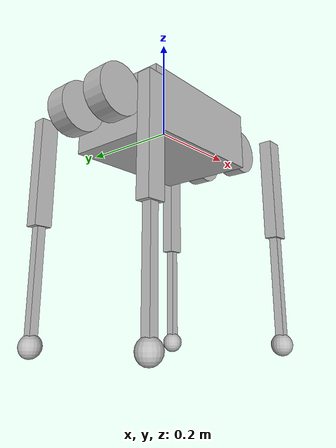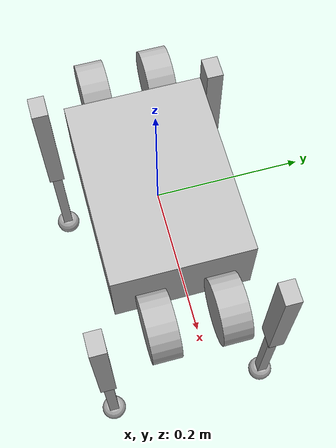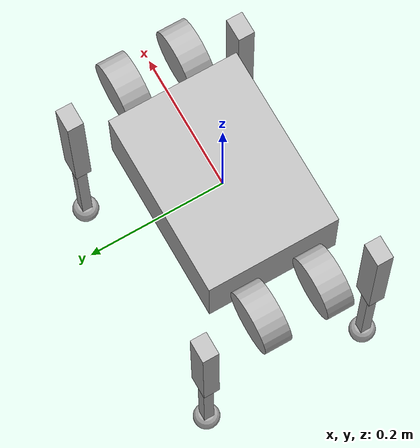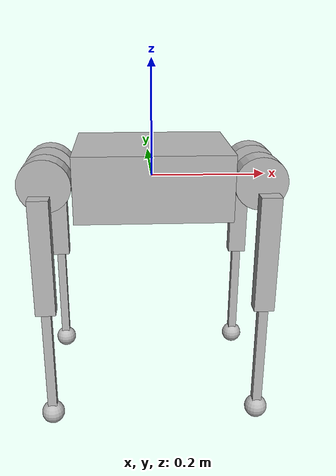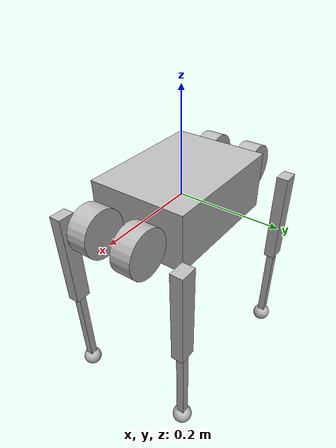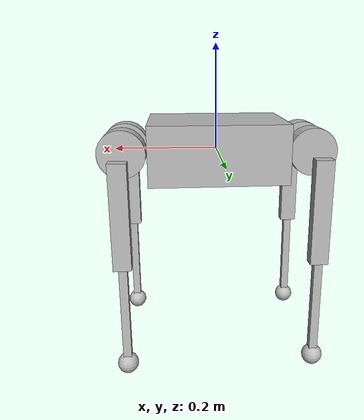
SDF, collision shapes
<sdf version="1.7">
  <model name="a1_description">
    <link name="base">
      <inertial>
        <pose>0.012728 0.002186 0.000515 0 -0 0</pose>
        <mass>4.714</mass>
        <inertia>
          <ixx>0.0169399</ixx>
          <ixy>8.38742e-05</ixy>
          <ixz>0.000597672</ixz>
          <iyy>0.0565802</iyy>
          <iyz>2.51329e-05</iyz>
          <izz>0.0648138</izz>
        </inertia>
      </inertial>
      <collision name="base_fixed_joint_lump__trunk_collision">
        <pose>0 0 0 0 -0 0</pose>
        <geometry>
          <box>
            <size>0.267 0.194 0.114</size>
          </box>
        </geometry>
      </collision>
      <collision name="base_fixed_joint_lump__imu_link_collision_1">
        <pose>0 0 0 0 -0 0</pose>
        <geometry>
          <box>
            <size>0.001 0.001 0.001</size>
          </box>
        </geometry>
      </collision>
      <visual name="base_visual">
        <pose>0 0 0 0 -0 0</pose>
        <geometry>
          <box>
            <size>0.001 0.001 0.001</size>
          </box>
        </geometry>
      </visual>
      <visual name="base_fixed_joint_lump__trunk_visual_1">
        <pose>0 0 0 0 -0 0</pose>
        <geometry>
          <mesh>
            <scale>1 1 1</scale>
            <uri>model://a1/meshes/trunk.stl</uri>
          </mesh>
        </geometry>
      </visual>
      <visual name="base_fixed_joint_lump__imu_link_visual_2">
        <pose>0 0 0 0 -0 0</pose>
        <geometry>
          <box>
            <size>0.001 0.001 0.001</size>
          </box>
        </geometry>
      </visual>
    </link>
    <joint name="FL_hip_joint" type="revolute">
      <pose relative_to="base">0.183 0.047 0 0 -0 0</pose>
      <parent>base</parent>
      <child>FL_hip</child>
      <axis>
        <xyz>1 0 0</xyz>
        <limit>
          <lower>-0.802851</lower>
          <upper>0.802851</upper>
          <effort>20</effort>
          <velocity>52.4</velocity>
        </limit>
        <dynamics>
          <damping>0</damping>
          <friction>0</friction>
          <spring_reference>0</spring_reference>
          <spring_stiffness>0</spring_stiffness>
        </dynamics>
      </axis>
    </joint>
    <link name="FL_hip">
      <pose relative_to="FL_hip_joint">0 0 0 0 -0 0</pose>
      <inertial>
        <pose>-0.003311 0.000635 3.1e-05 0 -0 0</pose>
        <mass>0.696</mass>
        <inertia>
          <ixx>0.000469246</ixx>
          <ixy>-9.409e-06</ixy>
          <ixz>-3.42e-07</ixz>
          <iyy>0.00080749</iyy>
          <iyz>-4.66e-07</iyz>
          <izz>0.000552929</izz>
        </inertia>
      </inertial>
      <collision name="FL_hip_collision">
        <pose>0 0 0 1.5708 -0 0</pose>
        <geometry>
          <cylinder>
            <length>0.04</length>
            <radius>0.046</radius>
          </cylinder>
        </geometry>
      </collision>
      <visual name="FL_hip_visual">
        <pose>0 0 0 0 -0 0</pose>
        <geometry>
          <mesh>
            <scale>1 1 1</scale>
            <uri>model://a1/meshes/hip.stl</uri>
          </mesh>
        </geometry>
      </visual>
    </link>
    <joint name="FL_thigh_joint" type="revolute">
      <pose relative_to="FL_hip">0 0.08505 0 0 -0 0</pose>
      <parent>FL_hip</parent>
      <child>FL_thigh</child>
      <axis>
        <xyz>0 1 0</xyz>
        <limit>
          <lower>-1.0472</lower>
          <upper>4.18879</upper>
          <effort>55</effort>
          <velocity>28.6</velocity>
        </limit>
        <dynamics>
          <damping>0</damping>
          <friction>0</friction>
          <spring_reference>0</spring_reference>
          <spring_stiffness>0</spring_stiffness>
        </dynamics>
      </axis>
    </joint>
    <link name="FL_thigh">
      <pose relative_to="FL_thigh_joint">0 0 0 0 -0 0</pose>
      <inertial>
        <pose>-0.003237 -0.022327 -0.027326 0 -0 0</pose>
        <mass>1.013</mass>
        <inertia>
          <ixx>0.00552906</ixx>
          <ixy>4.825e-06</ixy>
          <ixz>0.000343869</ixz>
          <iyy>0.00513934</iyy>
          <iyz>2.2448e-05</iyz>
          <izz>0.00136779</izz>
        </inertia>
      </inertial>
      <collision name="FL_thigh_collision">
        <pose>0 0 -0.1 0 1.5708 0</pose>
        <geometry>
          <box>
            <size>0.2 0.0245 0.034</size>
          </box>
        </geometry>
      </collision>
      <visual name="FL_thigh_visual">
        <pose>0 0 0 0 -0 0</pose>
        <geometry>
          <mesh>
            <scale>1 1 1</scale>
            <uri>model://a1/meshes/thigh.stl</uri>
          </mesh>
        </geometry>
      </visual>
    </link>
    <joint name="FL_calf_joint" type="revolute">
      <pose relative_to="FL_thigh">0 0 -0.2 0 -0 0</pose>
      <parent>FL_thigh</parent>
      <child>FL_calf</child>
      <axis>
        <xyz>0 1 0</xyz>
        <limit>
          <lower>-2.69653</lower>
          <upper>-0.916298</upper>
          <effort>55</effort>
          <velocity>28.6</velocity>
        </limit>
        <dynamics>
          <damping>0</damping>
          <friction>0</friction>
          <spring_reference>0</spring_reference>
          <spring_stiffness>0</spring_stiffness>
        </dynamics>
      </axis>
    </joint>
    <link name="FL_calf">
      <pose relative_to="FL_calf_joint">0 0 0 0 -0 0</pose>
      <inertial>
        <pose>0.004727 0 -0.131975 0 -0 0</pose>
        <mass>0.226</mass>
        <inertia>
          <ixx>0.00338557</ixx>
          <ixy>0</ixy>
          <ixz>-0.000167427</ixz>
          <iyy>0.00340344</iyy>
          <iyz>0</iyz>
          <izz>4.38509e-05</izz>
        </inertia>
      </inertial>
      <collision name="FL_calf_collision">
        <pose>0 0 -0.1 0 1.5708 0</pose>
        <geometry>
          <box>
            <size>0.2 0.016 0.016</size>
          </box>
        </geometry>
      </collision>
      <collision name="FL_calf_fixed_joint_lump__FL_foot_collision_1">
        <pose>0 0 -0.2 0 -0 0</pose>
        <geometry>
          <sphere>
            <radius>0.02</radius>
          </sphere>
        </geometry>
      </collision>
      <visual name="FL_calf_visual">
        <pose>0 0 0 0 -0 0</pose>
        <geometry>
          <mesh>
            <scale>1 1 1</scale>
            <uri>model://a1/meshes/calf.stl</uri>
          </mesh>
        </geometry>
      </visual>
      <visual name="FL_calf_fixed_joint_lump__FL_foot_visual_1">
        <pose>0 0 -0.2 0 -0 0</pose>
        <geometry>
          <sphere>
            <radius>0.01</radius>
          </sphere>
        </geometry>
      </visual>
    </link>
    <joint name="FR_hip_joint" type="revolute">
      <pose relative_to="base">0.183 -0.047 0 0 -0 0</pose>
      <parent>base</parent>
      <child>FR_hip</child>
      <axis>
        <xyz>1 0 0</xyz>
        <limit>
          <lower>-0.802851</lower>
          <upper>0.802851</upper>
          <effort>20</effort>
          <velocity>52.4</velocity>
        </limit>
        <dynamics>
          <damping>0</damping>
          <friction>0</friction>
          <spring_reference>0</spring_reference>
          <spring_stiffness>0</spring_stiffness>
        </dynamics>
      </axis>
    </joint>
    <link name="FR_hip">
      <pose relative_to="FR_hip_joint">0 0 0 0 -0 0</pose>
      <inertial>
        <pose>-0.003311 -0.000635 3.1e-05 0 -0 0</pose>
        <mass>0.696</mass>
        <inertia>
          <ixx>0.000469246</ixx>
          <ixy>9.409e-06</ixy>
          <ixz>-3.42e-07</ixz>
          <iyy>0.00080749</iyy>
          <iyz>4.66e-07</iyz>
          <izz>0.000552929</izz>
        </inertia>
      </inertial>
      <collision name="FR_hip_collision">
        <pose>0 0 0 1.5708 -0 0</pose>
        <geometry>
          <cylinder>
            <length>0.04</length>
            <radius>0.046</radius>
          </cylinder>
        </geometry>
      </collision>
      <visual name="FR_hip_visual">
        <pose>0 0 0 -3.14159 0 0</pose>
        <geometry>
          <mesh>
            <scale>1 1 1</scale>
            <uri>model://a1/meshes/hip.stl</uri>
          </mesh>
        </geometry>
      </visual>
    </link>
    <joint name="FR_thigh_joint" type="revolute">
      <pose relative_to="FR_hip">0 -0.08505 0 0 -0 0</pose>
      <parent>FR_hip</parent>
      <child>FR_thigh</child>
      <axis>
        <xyz>0 1 0</xyz>
        <limit>
          <lower>-1.0472</lower>
          <upper>4.18879</upper>
          <effort>55</effort>
          <velocity>28.6</velocity>
        </limit>
        <dynamics>
          <damping>0</damping>
          <friction>0</friction>
          <spring_reference>0</spring_reference>
          <spring_stiffness>0</spring_stiffness>
        </dynamics>
      </axis>
    </joint>
    <link name="FR_thigh">
      <pose relative_to="FR_thigh_joint">0 0 0 0 -0 0</pose>
      <inertial>
        <pose>-0.003237 0.022327 -0.027326 0 -0 0</pose>
        <mass>1.013</mass>
        <inertia>
          <ixx>0.00552906</ixx>
          <ixy>-4.825e-06</ixy>
          <ixz>0.000343869</ixz>
          <iyy>0.00513934</iyy>
          <iyz>-2.2448e-05</iyz>
          <izz>0.00136779</izz>
        </inertia>
      </inertial>
      <collision name="FR_thigh_collision">
        <pose>0 0 -0.1 0 1.5708 0</pose>
        <geometry>
          <box>
            <size>0.2 0.0245 0.034</size>
          </box>
        </geometry>
      </collision>
      <visual name="FR_thigh_visual">
        <pose>0 0 0 0 -0 0</pose>
        <geometry>
          <mesh>
            <scale>1 1 1</scale>
            <uri>model://a1/meshes/thigh_mirror.stl</uri>
          </mesh>
        </geometry>
      </visual>
    </link>
    <joint name="FR_calf_joint" type="revolute">
      <pose relative_to="FR_thigh">0 0 -0.2 0 -0 0</pose>
      <parent>FR_thigh</parent>
      <child>FR_calf</child>
      <axis>
        <xyz>0 1 0</xyz>
        <limit>
          <lower>-2.69653</lower>
          <upper>-0.916298</upper>
          <effort>55</effort>
          <velocity>28.6</velocity>
        </limit>
        <dynamics>
          <damping>0</damping>
          <friction>0</friction>
          <spring_reference>0</spring_reference>
          <spring_stiffness>0</spring_stiffness>
        </dynamics>
      </axis>
    </joint>
    <link name="FR_calf">
      <pose relative_to="FR_calf_joint">0 0 0 0 -0 0</pose>
      <inertial>
        <pose>0.004727 0 -0.131975 0 -0 0</pose>
        <mass>0.226</mass>
        <inertia>
          <ixx>0.00338557</ixx>
          <ixy>0</ixy>
          <ixz>-0.000167427</ixz>
          <iyy>0.00340344</iyy>
          <iyz>0</iyz>
          <izz>4.38509e-05</izz>
        </inertia>
      </inertial>
      <collision name="FR_calf_collision">
        <pose>0 0 -0.1 0 1.5708 0</pose>
        <geometry>
          <box>
            <size>0.2 0.016 0.016</size>
          </box>
        </geometry>
      </collision>
      <collision name="FR_calf_fixed_joint_lump__FR_foot_collision_1">
        <pose>0 0 -0.2 0 -0 0</pose>
        <geometry>
          <sphere>
            <radius>0.02</radius>
          </sphere>
        </geometry>
      </collision>
      <visual name="FR_calf_visual">
        <pose>0 0 0 0 -0 0</pose>
        <geometry>
          <mesh>
            <scale>1 1 1</scale>
            <uri>model://a1/meshes/calf.stl</uri>
          </mesh>
        </geometry>
      </visual>
      <visual name="FR_calf_fixed_joint_lump__FR_foot_visual_1">
        <pose>0 0 -0.2 0 -0 0</pose>
        <geometry>
          <sphere>
            <radius>0.01</radius>
          </sphere>
        </geometry>
      </visual>
    </link>
    <joint name="RL_hip_joint" type="revolute">
      <pose relative_to="base">-0.183 0.047 0 0 -0 0</pose>
      <parent>base</parent>
      <child>RL_hip</child>
      <axis>
        <xyz>1 0 0</xyz>
        <limit>
          <lower>-0.802851</lower>
          <upper>0.802851</upper>
          <effort>20</effort>
          <velocity>52.4</velocity>
        </limit>
        <dynamics>
          <damping>0</damping>
          <friction>0</friction>
          <spring_reference>0</spring_reference>
          <spring_stiffness>0</spring_stiffness>
        </dynamics>
      </axis>
    </joint>
    <link name="RL_hip">
      <pose relative_to="RL_hip_joint">0 0 0 0 -0 0</pose>
      <inertial>
        <pose>0.003311 0.000635 3.1e-05 0 -0 0</pose>
        <mass>0.696</mass>
        <inertia>
          <ixx>0.000469246</ixx>
          <ixy>9.409e-06</ixy>
          <ixz>3.42e-07</ixz>
          <iyy>0.00080749</iyy>
          <iyz>-4.66e-07</iyz>
          <izz>0.000552929</izz>
        </inertia>
      </inertial>
      <collision name="RL_hip_collision">
        <pose>0 0 0 1.5708 -0 0</pose>
        <geometry>
          <cylinder>
            <length>0.04</length>
            <radius>0.046</radius>
          </cylinder>
        </geometry>
      </collision>
      <visual name="RL_hip_visual">
        <pose>0 0 0 3.14159 -0 3.14159</pose>
        <geometry>
          <mesh>
            <scale>1 1 1</scale>
            <uri>model://a1/meshes/hip.stl</uri>
          </mesh>
        </geometry>
      </visual>
    </link>
    <joint name="RL_thigh_joint" type="revolute">
      <pose relative_to="RL_hip">0 0.08505 0 0 -0 0</pose>
      <parent>RL_hip</parent>
      <child>RL_thigh</child>
      <axis>
        <xyz>0 1 0</xyz>
        <limit>
          <lower>-1.0472</lower>
          <upper>4.18879</upper>
          <effort>55</effort>
          <velocity>28.6</velocity>
        </limit>
        <dynamics>
          <damping>0</damping>
          <friction>0</friction>
          <spring_reference>0</spring_reference>
          <spring_stiffness>0</spring_stiffness>
        </dynamics>
      </axis>
    </joint>
    <link name="RL_thigh">
      <pose relative_to="RL_thigh_joint">0 0 0 0 -0 0</pose>
      <inertial>
        <pose>-0.003237 -0.022327 -0.027326 0 -0 0</pose>
        <mass>1.013</mass>
        <inertia>
          <ixx>0.00552906</ixx>
          <ixy>4.825e-06</ixy>
          <ixz>0.000343869</ixz>
          <iyy>0.00513934</iyy>
          <iyz>2.2448e-05</iyz>
          <izz>0.00136779</izz>
        </inertia>
      </inertial>
      <collision name="RL_thigh_collision">
        <pose>0 0 -0.1 0 1.5708 0</pose>
        <geometry>
          <box>
            <size>0.2 0.0245 0.034</size>
          </box>
        </geometry>
      </collision>
      <visual name="RL_thigh_visual">
        <pose>0 0 0 0 -0 0</pose>
        <geometry>
          <mesh>
            <scale>1 1 1</scale>
            <uri>model://a1/meshes/thigh.stl</uri>
          </mesh>
        </geometry>
      </visual>
    </link>
    <joint name="RL_calf_joint" type="revolute">
      <pose relative_to="RL_thigh">0 0 -0.2 0 -0 0</pose>
      <parent>RL_thigh</parent>
      <child>RL_calf</child>
      <axis>
        <xyz>0 1 0</xyz>
        <limit>
          <lower>-2.69653</lower>
          <upper>-0.916298</upper>
          <effort>55</effort>
          <velocity>28.6</velocity>
        </limit>
        <dynamics>
          <damping>0</damping>
          <friction>0</friction>
          <spring_reference>0</spring_reference>
          <spring_stiffness>0</spring_stiffness>
        </dynamics>
      </axis>
    </joint>
    <link name="RL_calf">
      <pose relative_to="RL_calf_joint">0 0 0 0 -0 0</pose>
      <inertial>
        <pose>0.004727 0 -0.131975 0 -0 0</pose>
        <mass>0.226</mass>
        <inertia>
          <ixx>0.00338557</ixx>
          <ixy>0</ixy>
          <ixz>-0.000167427</ixz>
          <iyy>0.00340344</iyy>
          <iyz>0</iyz>
          <izz>4.38509e-05</izz>
        </inertia>
      </inertial>
      <collision name="RL_calf_collision">
        <pose>0 0 -0.1 0 1.5708 0</pose>
        <geometry>
          <box>
            <size>0.2 0.016 0.016</size>
          </box>
        </geometry>
      </collision>
      <collision name="RL_calf_fixed_joint_lump__RL_foot_collision_1">
        <pose>0 0 -0.2 0 -0 0</pose>
        <geometry>
          <sphere>
            <radius>0.02</radius>
          </sphere>
        </geometry>
      </collision>
      <visual name="RL_calf_visual">
        <pose>0 0 0 0 -0 0</pose>
        <geometry>
          <mesh>
            <scale>1 1 1</scale>
            <uri>model://a1/meshes/calf.stl</uri>
          </mesh>
        </geometry>
      </visual>
      <visual name="RL_calf_fixed_joint_lump__RL_foot_visual_1">
        <pose>0 0 -0.2 0 -0 0</pose>
        <geometry>
          <sphere>
            <radius>0.01</radius>
          </sphere>
        </geometry>
      </visual>
    </link>
    <joint name="RR_hip_joint" type="revolute">
      <pose relative_to="base">-0.183 -0.047 0 0 -0 0</pose>
      <parent>base</parent>
      <child>RR_hip</child>
      <axis>
        <xyz>1 0 0</xyz>
        <limit>
          <lower>-0.802851</lower>
          <upper>0.802851</upper>
          <effort>20</effort>
          <velocity>52.4</velocity>
        </limit>
        <dynamics>
          <damping>0</damping>
          <friction>0</friction>
          <spring_reference>0</spring_reference>
          <spring_stiffness>0</spring_stiffness>
        </dynamics>
      </axis>
    </joint>
    <link name="RR_hip">
      <pose relative_to="RR_hip_joint">0 0 0 0 -0 0</pose>
      <inertial>
        <pose>0.003311 -0.000635 3.1e-05 0 -0 0</pose>
        <mass>0.696</mass>
        <inertia>
          <ixx>0.000469246</ixx>
          <ixy>-9.409e-06</ixy>
          <ixz>3.42e-07</ixz>
          <iyy>0.00080749</iyy>
          <iyz>4.66e-07</iyz>
          <izz>0.000552929</izz>
        </inertia>
      </inertial>
      <collision name="RR_hip_collision">
        <pose>0 0 0 1.5708 -0 0</pose>
        <geometry>
          <cylinder>
            <length>0.04</length>
            <radius>0.046</radius>
          </cylinder>
        </geometry>
      </collision>
      <visual name="RR_hip_visual">
        <pose>0 0 0 0 -0 3.14159</pose>
        <geometry>
          <mesh>
            <scale>1 1 1</scale>
            <uri>model://a1/meshes/hip.stl</uri>
          </mesh>
        </geometry>
      </visual>
    </link>
    <joint name="RR_thigh_joint" type="revolute">
      <pose relative_to="RR_hip">0 -0.08505 0 0 -0 0</pose>
      <parent>RR_hip</parent>
      <child>RR_thigh</child>
      <axis>
        <xyz>0 1 0</xyz>
        <limit>
          <lower>-1.0472</lower>
          <upper>4.18879</upper>
          <effort>55</effort>
          <velocity>28.6</velocity>
        </limit>
        <dynamics>
          <damping>0</damping>
          <friction>0</friction>
          <spring_reference>0</spring_reference>
          <spring_stiffness>0</spring_stiffness>
        </dynamics>
      </axis>
    </joint>
    <link name="RR_thigh">
      <pose relative_to="RR_thigh_joint">0 0 0 0 -0 0</pose>
      <inertial>
        <pose>-0.003237 0.022327 -0.027326 0 -0 0</pose>
        <mass>1.013</mass>
        <inertia>
          <ixx>0.00552906</ixx>
          <ixy>-4.825e-06</ixy>
          <ixz>0.000343869</ixz>
          <iyy>0.00513934</iyy>
          <iyz>-2.2448e-05</iyz>
          <izz>0.00136779</izz>
        </inertia>
      </inertial>
      <collision name="RR_thigh_collision">
        <pose>0 0 -0.1 0 1.5708 0</pose>
        <geometry>
          <box>
            <size>0.2 0.0245 0.034</size>
          </box>
        </geometry>
      </collision>
      <visual name="RR_thigh_visual">
        <pose>0 0 0 0 -0 0</pose>
        <geometry>
          <mesh>
            <scale>1 1 1</scale>
            <uri>model://a1/meshes/thigh_mirror.stl</uri>
          </mesh>
        </geometry>
      </visual>
    </link>
    <joint name="RR_calf_joint" type="revolute">
      <pose relative_to="RR_thigh">0 0 -0.2 0 -0 0</pose>
      <parent>RR_thigh</parent>
      <child>RR_calf</child>
      <axis>
        <xyz>0 1 0</xyz>
        <limit>
          <lower>-2.69653</lower>
          <upper>-0.916298</upper>
          <effort>55</effort>
          <velocity>28.6</velocity>
        </limit>
        <dynamics>
          <damping>0</damping>
          <friction>0</friction>
          <spring_reference>0</spring_reference>
          <spring_stiffness>0</spring_stiffness>
        </dynamics>
      </axis>
    </joint>
    <link name="RR_calf">
      <pose relative_to="RR_calf_joint">0 0 0 0 -0 0</pose>
      <inertial>
        <pose>0.004727 0 -0.131975 0 -0 0</pose>
        <mass>0.226</mass>
        <inertia>
          <ixx>0.00338557</ixx>
          <ixy>0</ixy>
          <ixz>-0.000167427</ixz>
          <iyy>0.00340344</iyy>
          <iyz>0</iyz>
          <izz>4.38509e-05</izz>
        </inertia>
      </inertial>
      <collision name="RR_calf_collision">
        <pose>0 0 -0.1 0 1.5708 0</pose>
        <geometry>
          <box>
            <size>0.2 0.016 0.016</size>
          </box>
        </geometry>
      </collision>
      <collision name="RR_calf_fixed_joint_lump__RR_foot_collision_1">
        <pose>0 0 -0.2 0 -0 0</pose>
        <geometry>
          <sphere>
            <radius>0.02</radius>
          </sphere>
        </geometry>
      </collision>
      <visual name="RR_calf_visual">
        <pose>0 0 0 0 -0 0</pose>
        <geometry>
          <mesh>
            <scale>1 1 1</scale>
            <uri>model://a1/meshes/calf.stl</uri>
          </mesh>
        </geometry>
      </visual>
      <visual name="RR_calf_fixed_joint_lump__RR_foot_visual_1">
        <pose>0 0 -0.2 0 -0 0</pose>
        <geometry>
          <sphere>
            <radius>0.01</radius>
          </sphere>
        </geometry>
      </visual>
    </link>
  </model>
</sdf>
